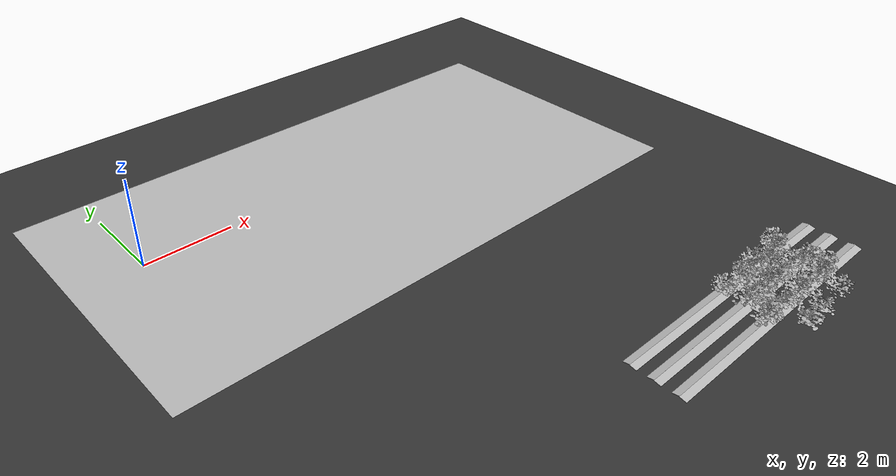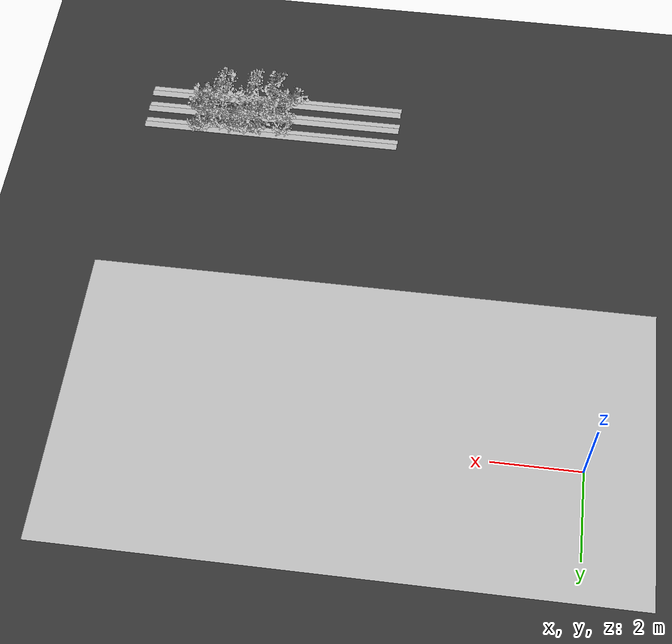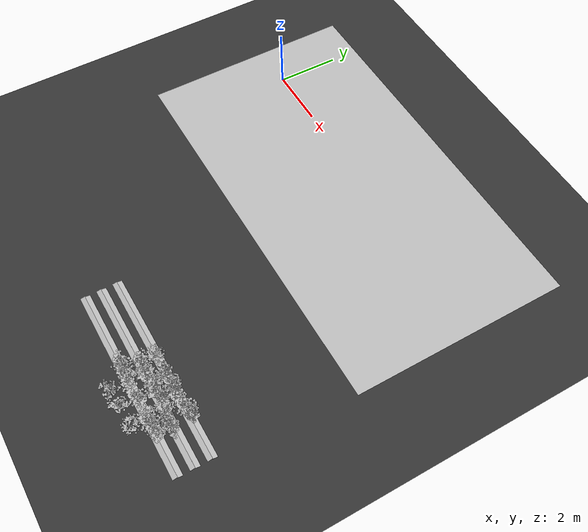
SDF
<sdf version="1.7">
 <world name="default">
  <model name="ground_plane">
   <static>1</static>
   <link name="link">
    <collision name="collision">
     <geometry><plane><normal>0 0 1</normal><size>100 100</size></plane></geometry>
     <surface>
      <contact><collide_bitmask>65535</collide_bitmask></contact>
      <friction><ode><mu>100</mu><mu2>50</mu2></ode></friction>
     </surface>
    </collision>
    <visual name="visual">
     <cast_shadows>0</cast_shadows>
     <geometry><plane><normal>0 0 1</normal><size>100 100</size></plane></geometry>
     <material>
      <ambient>0.2 0.2 0.2 1.0</ambient>
      <diffuse>0.2 0.2 0.2 1.0</diffuse>
      <specular>0.2 0.2 0.2 1.0</specular>
      <emissive>0.2 0.2 0.2 1.0</emissive>
     </material>
    </visual>
   </link>
  </model>
  <model name="ground">
   <pose>5 -0.5 0.01  3.141592654 0 0</pose>
   <static>true</static>
   <link name="body">
    <visual name="visual">
     <cast_shadows>0</cast_shadows>
     <geometry>
      <mesh><uri>file:///home/ifcosta/final_ws/src/cnn_line/worlds/models/ground.obj</uri></mesh>
     </geometry>
    </visual>
   </link>
  </model>
  <model name="plt_30061">
   <pose>8.11 -9.75 0.0173 0.0 0.0 1.2409</pose>
   <static>true</static>
   <link name="body">
    <visual name="visual">
     <geometry>
      <mesh><uri>file:///home/ifcosta/final_ws/src/cnn_line/worlds/models/plant33.obj</uri></mesh>
     </geometry>
    </visual>
   </link>
  </model>
  <model name="plt_30063">
   <pose>8.62 -9.75 0.0153 0.0 0.0 0.64871</pose>
   <static>true</static>
   <link name="body">
    <visual name="visual">
     <geometry>
      <mesh><uri>file:///home/ifcosta/final_ws/src/cnn_line/worlds/models/plant31.obj</uri></mesh>
     </geometry>
    </visual>
   </link>
  </model>
  <model name="plt_30065">
   <pose>9.31 -9.73 0.0123 0.0 0.0 -0.77732</pose>
   <static>true</static>
   <link name="body">
    <visual name="visual">
     <geometry>
      <mesh><uri>file:///home/ifcosta/final_ws/src/cnn_line/worlds/models/plant35.obj</uri></mesh>
     </geometry>
    </visual>
   </link>
  </model>
  <model name="plt_30093">
   <pose>7.56 -9.22 0.0167 0.0 0.0 0.11553</pose>
   <static>true</static>
   <link name="body">
    <visual name="visual">
     <geometry>
      <mesh><uri>file:///home/ifcosta/final_ws/src/cnn_line/worlds/models/plant30.obj</uri></mesh>
     </geometry>
    </visual>
   </link>
  </model>
  <model name="plt_30094">
   <pose>7.8 -9.18 0.015 0.0 0.0 -0.97665</pose>
   <static>true</static>
   <link name="body">
    <visual name="visual">
     <geometry>
      <mesh><uri>file:///home/ifcosta/final_ws/src/cnn_line/worlds/models/plant34.obj</uri></mesh>
     </geometry>
    </visual>
   </link>
  </model>
  <model name="plt_30095">
   <pose>8.09 -9.22 0.0172 0.0 0.0 2.9195</pose>
   <static>true</static>
   <link name="body">
    <visual name="visual">
     <geometry>
      <mesh><uri>file:///home/ifcosta/final_ws/src/cnn_line/worlds/models/plant36.obj</uri></mesh>
     </geometry>
    </visual>
   </link>
  </model>
  <model name="plt_30097">
   <pose>8.71 -9.25 0.0126 0.0 0.0 0.49256</pose>
   <static>true</static>
   <link name="body">
    <visual name="visual">
     <geometry>
      <mesh><uri>file:///home/ifcosta/final_ws/src/cnn_line/worlds/models/plant30.obj</uri></mesh>
     </geometry>
    </visual>
   </link>
  </model>
  <model name="plt_30099">
   <pose>9.27 -9.23 0.0146 0.0 0.0 -0.63484</pose>
   <static>true</static>
   <link name="body">
    <visual name="visual">
     <geometry>
      <mesh><uri>file:///home/ifcosta/final_ws/src/cnn_line/worlds/models/plant32.obj</uri></mesh>
     </geometry>
    </visual>
   </link>
  </model>
  <model name="plt_30100">
   <pose>9.55 -9.26 0.0164 0.0 0.0 0.55622</pose>
   <static>true</static>
   <link name="body">
    <visual name="visual">
     <geometry>
      <mesh><uri>file:///home/ifcosta/final_ws/src/cnn_line/worlds/models/plant30.obj</uri></mesh>
     </geometry>
    </visual>
   </link>
  </model>
  <model name="plt_30101">
   <pose>9.87 -9.23 0.0153 0.0 0.0 -0.72069</pose>
   <static>true</static>
   <link name="body">
    <visual name="visual">
     <geometry>
      <mesh><uri>file:///home/ifcosta/final_ws/src/cnn_line/worlds/models/plant31.obj</uri></mesh>
     </geometry>
    </visual>
   </link>
  </model>
  <model name="slope_1302">
   <pose>8.0 -9.25 -0.005 0.0 0.0 0.0</pose>
   <static>true</static>
   <link name="body">
    <visual name="visual">
     <geometry>
      <mesh><uri>file:///home/ifcosta/final_ws/src/cnn_line/worlds/models/slope.obj</uri></mesh>
     </geometry>
    </visual>
   </link>
  </model>
  <model name="slope_1402">
   <pose>8.0 -9.25 -0.005 0.0 0.0 3.1416</pose>
   <static>true</static>
   <link name="body">
    <visual name="visual">
     <geometry>
      <mesh><uri>file:///home/ifcosta/final_ws/src/cnn_line/worlds/models/slope.obj</uri></mesh>
     </geometry>
    </visual>
   </link>
  </model>
  <model name="plt_30128">
   <pose>7.8 -8.74 0.0154 0.0 0.0 -0.25434</pose>
   <static>true</static>
   <link name="body">
    <visual name="visual">
     <geometry>
      <mesh><uri>file:///home/ifcosta/final_ws/src/cnn_line/worlds/models/plant30.obj</uri></mesh>
     </geometry>
    </visual>
   </link>
  </model>
  <model name="plt_30129">
   <pose>8.08 -8.74 0.0173 0.0 0.0 1.2274</pose>
   <static>true</static>
   <link name="body">
    <visual name="visual">
     <geometry>
      <mesh><uri>file:///home/ifcosta/final_ws/src/cnn_line/worlds/models/plant31.obj</uri></mesh>
     </geometry>
    </visual>
   </link>
  </model>
  <model name="plt_30130">
   <pose>8.39 -8.73 0.0108 0.0 0.0 0.8548</pose>
   <static>true</static>
   <link name="body">
    <visual name="visual">
     <geometry>
      <mesh><uri>file:///home/ifcosta/final_ws/src/cnn_line/worlds/models/plant30.obj</uri></mesh>
     </geometry>
    </visual>
   </link>
  </model>
  <model name="plt_30131">
   <pose>8.68 -8.74 0.0159 0.0 0.0 -0.6574</pose>
   <static>true</static>
   <link name="body">
    <visual name="visual">
     <geometry>
      <mesh><uri>file:///home/ifcosta/final_ws/src/cnn_line/worlds/models/plant30.obj</uri></mesh>
     </geometry>
    </visual>
   </link>
  </model>
  <model name="plt_30132">
   <pose>9.0 -8.68 0.0154 0.0 0.0 -0.2246</pose>
   <static>true</static>
   <link name="body">
    <visual name="visual">
     <geometry>
      <mesh><uri>file:///home/ifcosta/final_ws/src/cnn_line/worlds/models/plant33.obj</uri></mesh>
     </geometry>
    </visual>
   </link>
  </model>
  <model name="plt_30133">
   <pose>9.36 -8.75 0.0143 0.0 0.0 0.34236</pose>
   <static>true</static>
   <link name="body">
    <visual name="visual">
     <geometry>
      <mesh><uri>file:///home/ifcosta/final_ws/src/cnn_line/worlds/models/plant35.obj</uri></mesh>
     </geometry>
    </visual>
   </link>
  </model>
  <model name="plt_30134">
   <pose>9.6 -8.77 0.0186 0.0 0.0 1.1462</pose>
   <static>true</static>
   <link name="body">
    <visual name="visual">
     <geometry>
      <mesh><uri>file:///home/ifcosta/final_ws/src/cnn_line/worlds/models/plant34.obj</uri></mesh>
     </geometry>
    </visual>
   </link>
  </model>
  <model name="plt_30135">
   <pose>9.93 -8.77 0.0165 0.0 0.0 0.24519</pose>
   <static>true</static>
   <link name="body">
    <visual name="visual">
     <geometry>
      <mesh><uri>file:///home/ifcosta/final_ws/src/cnn_line/worlds/models/plant34.obj</uri></mesh>
     </geometry>
    </visual>
   </link>
  </model>
  <model name="slope_1336">
   <pose>8.0 -8.75 -0.005 0.0 0.0 0.0</pose>
   <static>true</static>
   <link name="body">
    <visual name="visual">
     <geometry>
      <mesh><uri>file:///home/ifcosta/final_ws/src/cnn_line/worlds/models/slope.obj</uri></mesh>
     </geometry>
    </visual>
   </link>
  </model>
  <model name="slope_1436">
   <pose>8.0 -8.75 -0.005 0.0 0.0 3.1416</pose>
   <static>true</static>
   <link name="body">
    <visual name="visual">
     <geometry>
      <mesh><uri>file:///home/ifcosta/final_ws/src/cnn_line/worlds/models/slope.obj</uri></mesh>
     </geometry>
    </visual>
   </link>
  </model>
  <model name="plt_30162">
   <pose>7.73 -8.3 0.0115 0.0 0.0 1.0413</pose>
   <static>true</static>
   <link name="body">
    <visual name="visual">
     <geometry>
      <mesh><uri>file:///home/ifcosta/final_ws/src/cnn_line/worlds/models/plant35.obj</uri></mesh>
     </geometry>
    </visual>
   </link>
  </model>
  <model name="plt_30164">
   <pose>8.4 -8.26 0.0156 0.0 0.0 0.68501</pose>
   <static>true</static>
   <link name="body">
    <visual name="visual">
     <geometry>
      <mesh><uri>file:///home/ifcosta/final_ws/src/cnn_line/worlds/models/plant33.obj</uri></mesh>
     </geometry>
    </visual>
   </link>
  </model>
  <model name="plt_30165">
   <pose>8.7 -8.25 0.0144 0.0 0.0 0.4113</pose>
   <static>true</static>
   <link name="body">
    <visual name="visual">
     <geometry>
      <mesh><uri>file:///home/ifcosta/final_ws/src/cnn_line/worlds/models/plant31.obj</uri></mesh>
     </geometry>
    </visual>
   </link>
  </model>
  <model name="plt_30166">
   <pose>9.01 -8.29 0.0153 0.0 0.0 -0.13579</pose>
   <static>true</static>
   <link name="body">
    <visual name="visual">
     <geometry>
      <mesh><uri>file:///home/ifcosta/final_ws/src/cnn_line/worlds/models/plant33.obj</uri></mesh>
     </geometry>
    </visual>
   </link>
  </model>
  <model name="plt_30167">
   <pose>9.25 -8.31 0.0158 0.0 0.0 0.014668</pose>
   <static>true</static>
   <link name="body">
    <visual name="visual">
     <geometry>
      <mesh><uri>file:///home/ifcosta/final_ws/src/cnn_line/worlds/models/plant31.obj</uri></mesh>
     </geometry>
    </visual>
   </link>
  </model>
  <model name="plt_30168">
   <pose>9.61 -8.25 0.0155 0.0 0.0 0.47363</pose>
   <static>true</static>
   <link name="body">
    <visual name="visual">
     <geometry>
      <mesh><uri>file:///home/ifcosta/final_ws/src/cnn_line/worlds/models/plant30.obj</uri></mesh>
     </geometry>
    </visual>
   </link>
  </model>
  <model name="plt_30169">
   <pose>9.88 -8.21 0.0154 0.0 0.0 -0.22759</pose>
   <static>true</static>
   <link name="body">
    <visual name="visual">
     <geometry>
      <mesh><uri>file:///home/ifcosta/final_ws/src/cnn_line/worlds/models/plant33.obj</uri></mesh>
     </geometry>
    </visual>
   </link>
  </model>
  <model name="slope_1370">
   <pose>8.0 -8.25 -0.005 0.0 0.0 0.0</pose>
   <static>true</static>
   <link name="body">
    <visual name="visual">
     <geometry>
      <mesh><uri>file:///home/ifcosta/final_ws/src/cnn_line/worlds/models/slope.obj</uri></mesh>
     </geometry>
    </visual>
   </link>
  </model>
  <model name="slope_1470">
   <pose>8.0 -8.25 -0.005 0.0 0.0 3.1416</pose>
   <static>true</static>
   <link name="body">
    <visual name="visual">
     <geometry>
      <mesh><uri>file:///home/ifcosta/final_ws/src/cnn_line/worlds/models/slope.obj</uri></mesh>
     </geometry>
    </visual>
   </link>
  </model>
 </world>
</sdf>
